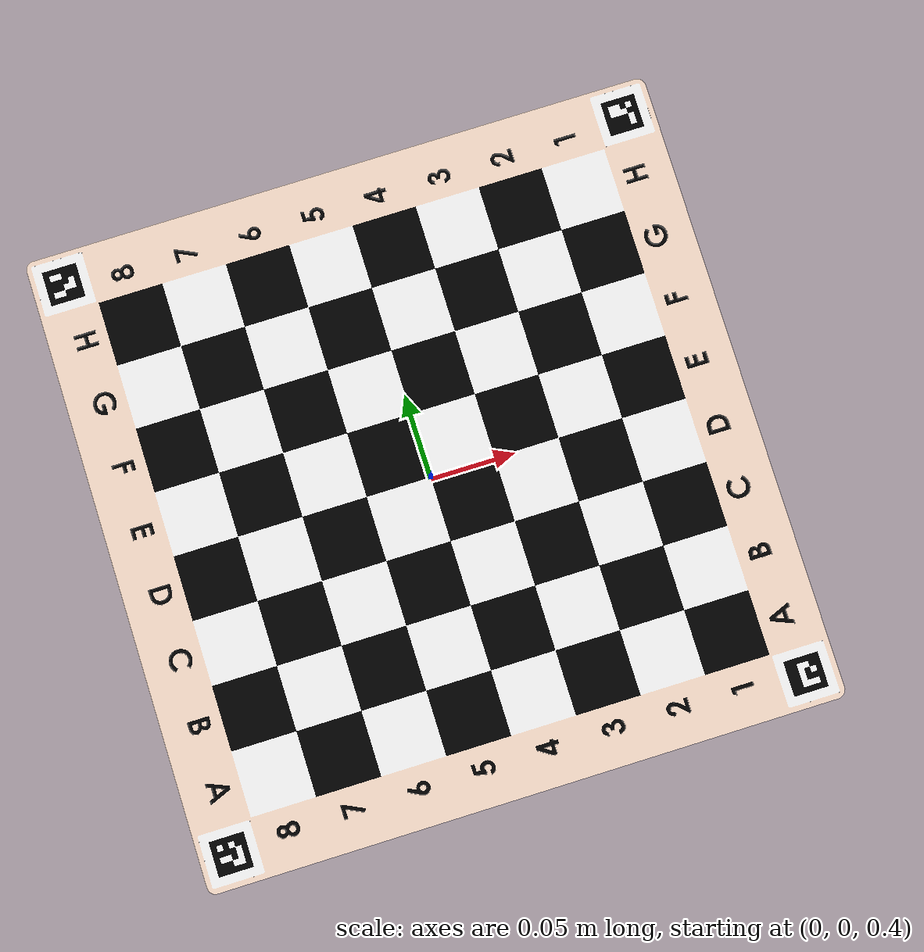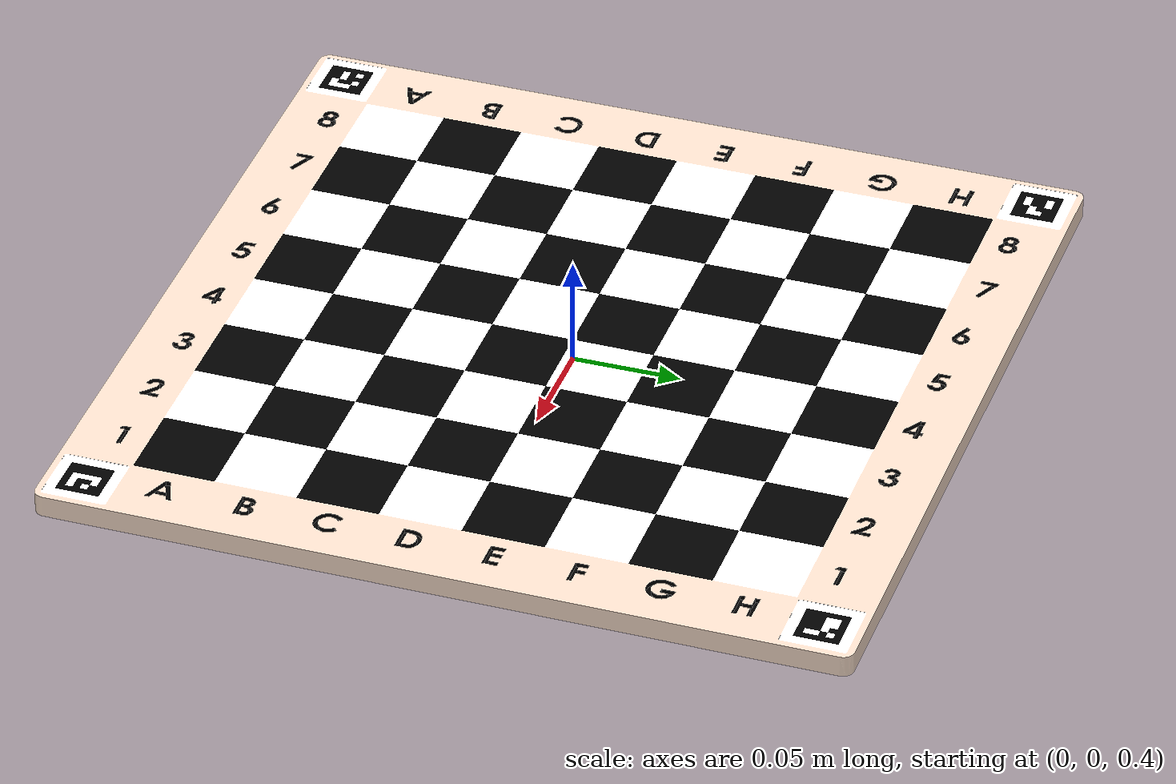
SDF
<?xml version="1.0" ?>
    <sdf version="1.6">
      <model name="chessboard">
        <pose>0 0 0.4 0 0 0</pose>
        <static>true</static>
        <link name="link">
          <visual name="visual">
            <geometry>
              <mesh>
                <uri>model://chessboard/meshes/chessboard.dae</uri>
              </mesh>
            </geometry>
            <material>
              <script>
                <uri>model://chessboard/materials/scripts</uri>
                <uri>model://chessboard/materials/textures</uri>
                <name>Chessboard</name>
              </script>
            </material>
          </visual>
        </link>
      </model>
    </sdf>
